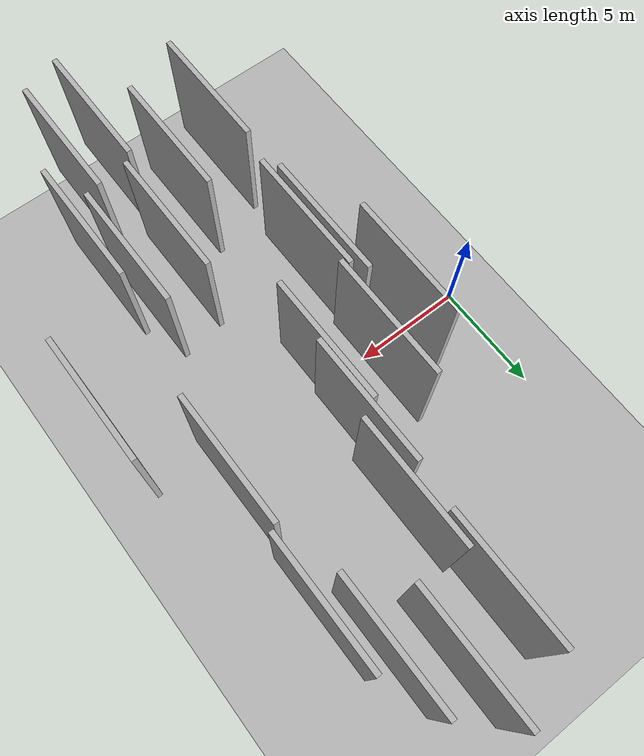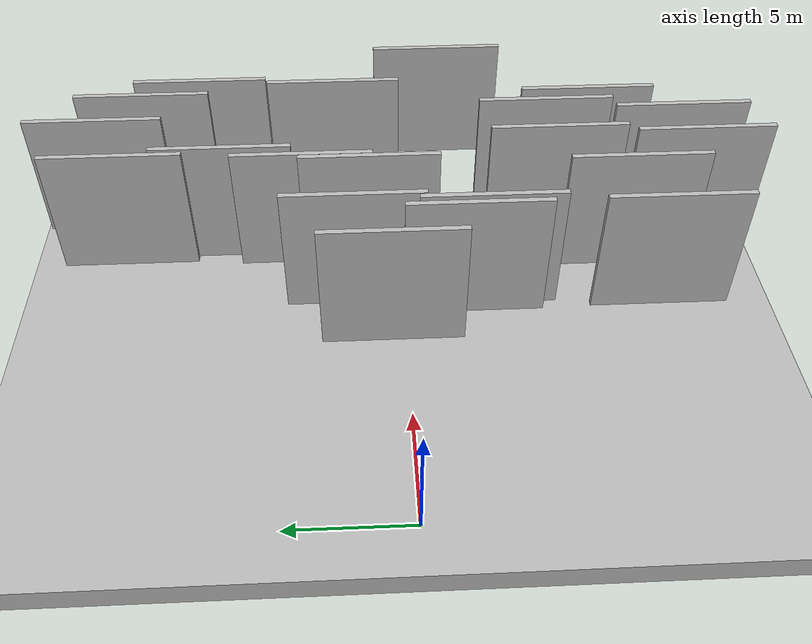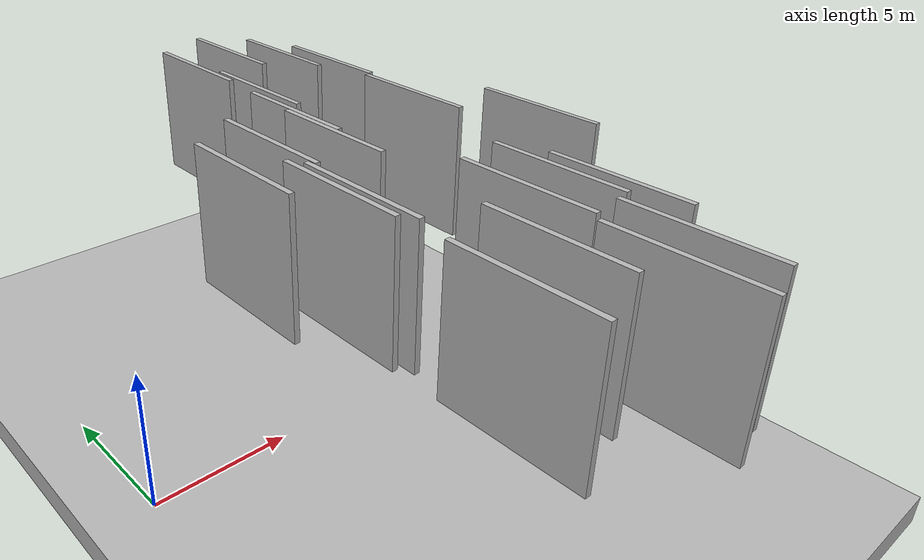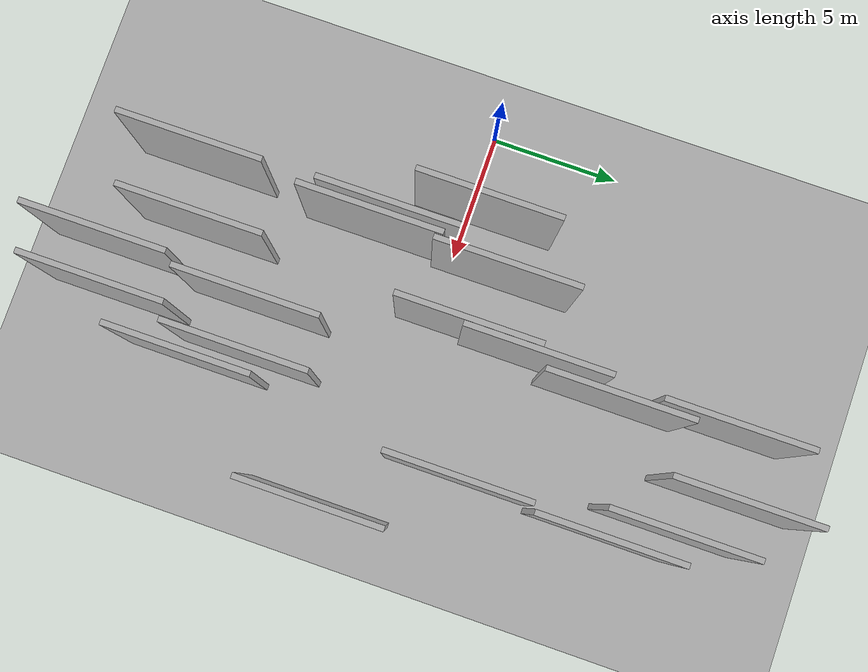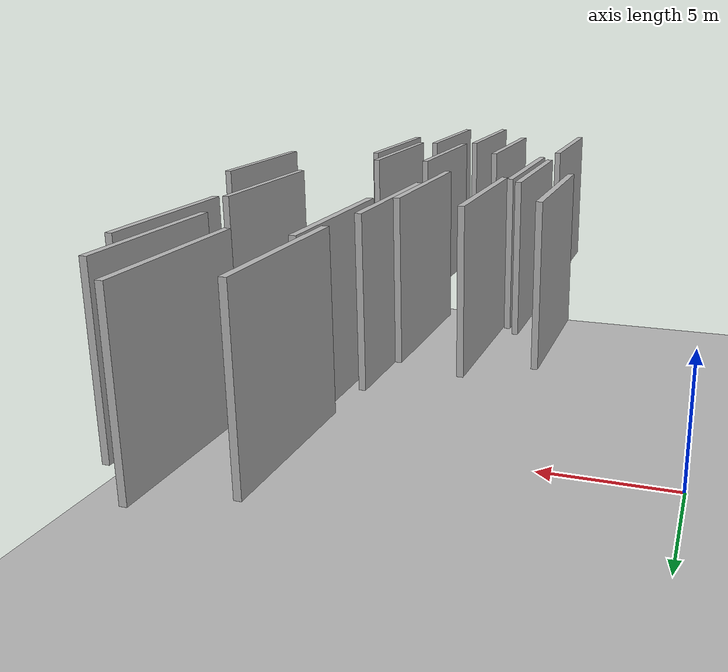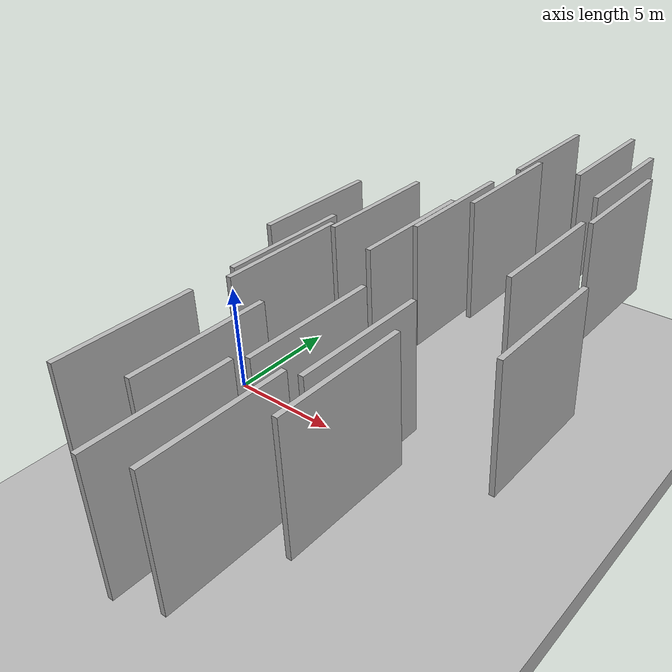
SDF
<?xml version="1.0" encoding="utf-8"?>

<sdf version="1.6">

   <world name="default">

      <gui fullscreen="0">

         <camera name="user_camera">

            <pose>-15 0 4.57585 0 0 0</pose>

            <view_controller>orbit</view_controller>

         </camera>

      </gui>

      <scene>

         <sky>

           <clouds>

             <speed>12</speed>

           </clouds>

         </sky>

         <ambient>0.4 0.4 0.4 1</ambient>

         <background>0.7 0.7 0.7 1</background>

         <shadows>1</shadows>

      </scene>

      <gravity>0 0 -9.8066</gravity>

      <magnetic_field>6e-06 2.3e-05 -4.2e-05</magnetic_field>

      <physics default="0" name="default_physics" type="ode">

         <ode>

            <solver>

               <type>quick</type>

               <iters>10</iters>

               <sor>1.0</sor>

               <use_dynamic_moi_rescaling>0</use_dynamic_moi_rescaling>

            </solver>

            <constraints>

               <cfm>0</cfm>

               <erp>0.2</erp>

               <contact_max_correcting_vel>100</contact_max_correcting_vel>

               <contact_surface_layer>0.001</contact_surface_layer>

            </constraints>

         </ode>

         <max_step_size>0.004</max_step_size>

         <real_time_factor>1</real_time_factor>

         <real_time_update_rate>250</real_time_update_rate>

      </physics>

      <light name="sun" type="directional">

         <cast_shadows>1</cast_shadows>

         <pose>0 0 10 0 0 0</pose>

         <diffuse>0.8 0.8 0.8 1</diffuse>

         <specular>0.2 0.2 0.2 1</specular>

         <attenuation>

            <range>1000</range>

            <constant>0.9</constant>

            <linear>0.01</linear>

            <quadratic>0.001</quadratic>

         </attenuation>

         <direction>-0.5 0.1 -0.9</direction>

      </light>

      <include>

         <name>ground_plane_1</name>

         <uri>model://HANNAS_ground_plane</uri>

         <pose>0 0 0  0 0 0</pose>

      </include>

      <include>

         <name>ground_plane_2</name>

         <uri>model://HANNAS_ground_plane</uri>

         <pose>100 0 0  0 0 0</pose>

      </include>

      <model name="HANNAS_wall_1">

         <static>1</static>

         <pose frame="">6.3868 2.0063 5.0 0.000000 0.000000 1.570796</pose>

         <link name="link">

            <pose frame="">0 0 2.50 0 0 0</pose>

            <collision name="collision">

               <geometry>

                  <box>

                     <size>5.00 0.2 5.00</size>

                  </box>

               </geometry>

               <max_contacts>10</max_contacts>

               <surface>

                  <contact>

                     <ode/>

                  </contact>

                  <bounce/>

                  <friction>

                     <torsional>

                        <ode/>

                     </torsional>

                     <ode/>

                  </friction>

               </surface>

            </collision>

            <visual name="visual">

               <cast_shadows>0</cast_shadows>

               <geometry>

                  <box>

                     <size>5.00 0.2 5.00</size>

                  </box>

               </geometry>

               <material>

                  <script>

                     <uri>model://HANNAS_wall/materials/scripts</uri>

                     <uri>model://HANNAS_wall/materials/textures</uri>

                     <name>vrc/HANNAS_wall</name>

                  </script>

               </material>

            </visual>

            <self_collide>0</self_collide>

            <enable_wind>0</enable_wind>

            <kinematic>0</kinematic>

         </link>

      </model>

      <model name="HANNAS_wall_2">

         <static>1</static>

         <pose frame="">5.8260 -8.9504 5.0 0.000000 0.000000 1.570796</pose>

         <link name="link">

            <pose frame="">0 0 2.50 0 0 0</pose>

            <collision name="collision">

               <geometry>

                  <box>

                     <size>5.00 0.2 5.00</size>

                  </box>

               </geometry>

               <max_contacts>10</max_contacts>

               <surface>

                  <contact>

                     <ode/>

                  </contact>

                  <bounce/>

                  <friction>

                     <torsional>

                        <ode/>

                     </torsional>

                     <ode/>

                  </friction>

               </surface>

            </collision>

            <visual name="visual">

               <cast_shadows>0</cast_shadows>

               <geometry>

                  <box>

                     <size>5.00 0.2 5.00</size>

                  </box>

               </geometry>

               <material>

                  <script>

                     <uri>model://HANNAS_wall/materials/scripts</uri>

                     <uri>model://HANNAS_wall/materials/textures</uri>

                     <name>vrc/HANNAS_wall</name>

                  </script>

               </material>

            </visual>

            <self_collide>0</self_collide>

            <enable_wind>0</enable_wind>

            <kinematic>0</kinematic>

         </link>

      </model>

      <model name="HANNAS_wall_3">

         <static>1</static>

         <pose frame="">12.6274 9.8577 5.0 0.000000 0.000000 1.570796</pose>

         <link name="link">

            <pose frame="">0 0 2.50 0 0 0</pose>

            <collision name="collision">

               <geometry>

                  <box>

                     <size>5.00 0.2 5.00</size>

                  </box>

               </geometry>

               <max_contacts>10</max_contacts>

               <surface>

                  <contact>

                     <ode/>

                  </contact>

                  <bounce/>

                  <friction>

                     <torsional>

                        <ode/>

                     </torsional>

                     <ode/>

                  </friction>

               </surface>

            </collision>

            <visual name="visual">

               <cast_shadows>0</cast_shadows>

               <geometry>

                  <box>

                     <size>5.00 0.2 5.00</size>

                  </box>

               </geometry>

               <material>

                  <script>

                     <uri>model://HANNAS_wall/materials/scripts</uri>

                     <uri>model://HANNAS_wall/materials/textures</uri>

                     <name>vrc/HANNAS_wall</name>

                  </script>

               </material>

            </visual>

            <self_collide>0</self_collide>

            <enable_wind>0</enable_wind>

            <kinematic>0</kinematic>

         </link>

      </model>

      <model name="HANNAS_wall_4">

         <static>1</static>

         <pose frame="">13.5132 7.7498 5.0 0.000000 0.000000 1.570796</pose>

         <link name="link">

            <pose frame="">0 0 2.50 0 0 0</pose>

            <collision name="collision">

               <geometry>

                  <box>

                     <size>5.00 0.2 5.00</size>

                  </box>

               </geometry>

               <max_contacts>10</max_contacts>

               <surface>

                  <contact>

                     <ode/>

                  </contact>

                  <bounce/>

                  <friction>

                     <torsional>

                        <ode/>

                     </torsional>

                     <ode/>

                  </friction>

               </surface>

            </collision>

            <visual name="visual">

               <cast_shadows>0</cast_shadows>

               <geometry>

                  <box>

                     <size>5.00 0.2 5.00</size>

                  </box>

               </geometry>

               <material>

                  <script>

                     <uri>model://HANNAS_wall/materials/scripts</uri>

                     <uri>model://HANNAS_wall/materials/textures</uri>

                     <name>vrc/HANNAS_wall</name>

                  </script>

               </material>

            </visual>

            <self_collide>0</self_collide>

            <enable_wind>0</enable_wind>

            <kinematic>0</kinematic>

         </link>

      </model>

      <model name="HANNAS_wall_5">

         <static>1</static>

         <pose frame="">6.1517 -2.7181 5.0 0.000000 0.000000 1.570796</pose>

         <link name="link">

            <pose frame="">0 0 2.50 0 0 0</pose>

            <collision name="collision">

               <geometry>

                  <box>

                     <size>5.00 0.2 5.00</size>

                  </box>

               </geometry>

               <max_contacts>10</max_contacts>

               <surface>

                  <contact>

                     <ode/>

                  </contact>

                  <bounce/>

                  <friction>

                     <torsional>

                        <ode/>

                     </torsional>

                     <ode/>

                  </friction>

               </surface>

            </collision>

            <visual name="visual">

               <cast_shadows>0</cast_shadows>

               <geometry>

                  <box>

                     <size>5.00 0.2 5.00</size>

                  </box>

               </geometry>

               <material>

                  <script>

                     <uri>model://HANNAS_wall/materials/scripts</uri>

                     <uri>model://HANNAS_wall/materials/textures</uri>

                     <name>vrc/HANNAS_wall</name>

                  </script>

               </material>

            </visual>

            <self_collide>0</self_collide>

            <enable_wind>0</enable_wind>

            <kinematic>0</kinematic>

         </link>

      </model>

      <model name="HANNAS_wall_6">

         <static>1</static>

         <pose frame="">8.8616 10.4589 5.0 0.000000 0.000000 1.570796</pose>

         <link name="link">

            <pose frame="">0 0 2.50 0 0 0</pose>

            <collision name="collision">

               <geometry>

                  <box>

                     <size>5.00 0.2 5.00</size>

                  </box>

               </geometry>

               <max_contacts>10</max_contacts>

               <surface>

                  <contact>

                     <ode/>

                  </contact>

                  <bounce/>

                  <friction>

                     <torsional>

                        <ode/>

                     </torsional>

                     <ode/>

                  </friction>

               </surface>

            </collision>

            <visual name="visual">

               <cast_shadows>0</cast_shadows>

               <geometry>

                  <box>

                     <size>5.00 0.2 5.00</size>

                  </box>

               </geometry>

               <material>

                  <script>

                     <uri>model://HANNAS_wall/materials/scripts</uri>

                     <uri>model://HANNAS_wall/materials/textures</uri>

                     <name>vrc/HANNAS_wall</name>

                  </script>

               </material>

            </visual>

            <self_collide>0</self_collide>

            <enable_wind>0</enable_wind>

            <kinematic>0</kinematic>

         </link>

      </model>

      <model name="HANNAS_wall_7">

         <static>1</static>

         <pose frame="">4.4778 0.7509 5.0 0.000000 0.000000 1.570796</pose>

         <link name="link">

            <pose frame="">0 0 2.50 0 0 0</pose>

            <collision name="collision">

               <geometry>

                  <box>

                     <size>5.00 0.2 5.00</size>

                  </box>

               </geometry>

               <max_contacts>10</max_contacts>

               <surface>

                  <contact>

                     <ode/>

                  </contact>

                  <bounce/>

                  <friction>

                     <torsional>

                        <ode/>

                     </torsional>

                     <ode/>

                  </friction>

               </surface>

            </collision>

            <visual name="visual">

               <cast_shadows>0</cast_shadows>

               <geometry>

                  <box>

                     <size>5.00 0.2 5.00</size>

                  </box>

               </geometry>

               <material>

                  <script>

                     <uri>model://HANNAS_wall/materials/scripts</uri>

                     <uri>model://HANNAS_wall/materials/textures</uri>

                     <name>vrc/HANNAS_wall</name>

                  </script>

               </material>

            </visual>

            <self_collide>0</self_collide>

            <enable_wind>0</enable_wind>

            <kinematic>0</kinematic>

         </link>

      </model>

      <model name="HANNAS_wall_8">

         <static>1</static>

         <pose frame="">11.6967 -5.2718 5.0 0.000000 0.000000 1.570796</pose>

         <link name="link">

            <pose frame="">0 0 2.50 0 0 0</pose>

            <collision name="collision">

               <geometry>

                  <box>

                     <size>5.00 0.2 5.00</size>

                  </box>

               </geometry>

               <max_contacts>10</max_contacts>

               <surface>

                  <contact>

                     <ode/>

                  </contact>

                  <bounce/>

                  <friction>

                     <torsional>

                        <ode/>

                     </torsional>

                     <ode/>

                  </friction>

               </surface>

            </collision>

            <visual name="visual">

               <cast_shadows>0</cast_shadows>

               <geometry>

                  <box>

                     <size>5.00 0.2 5.00</size>

                  </box>

               </geometry>

               <material>

                  <script>

                     <uri>model://HANNAS_wall/materials/scripts</uri>

                     <uri>model://HANNAS_wall/materials/textures</uri>

                     <name>vrc/HANNAS_wall</name>

                  </script>

               </material>

            </visual>

            <self_collide>0</self_collide>

            <enable_wind>0</enable_wind>

            <kinematic>0</kinematic>

         </link>

      </model>

      <model name="HANNAS_wall_9">

         <static>1</static>

         <pose frame="">5.7687 -2.1987 5.0 0.000000 0.000000 1.570796</pose>

         <link name="link">

            <pose frame="">0 0 2.50 0 0 0</pose>

            <collision name="collision">

               <geometry>

                  <box>

                     <size>5.00 0.2 5.00</size>

                  </box>

               </geometry>

               <max_contacts>10</max_contacts>

               <surface>

                  <contact>

                     <ode/>

                  </contact>

                  <bounce/>

                  <friction>

                     <torsional>

                        <ode/>

                     </torsional>

                     <ode/>

                  </friction>

               </surface>

            </collision>

            <visual name="visual">

               <cast_shadows>0</cast_shadows>

               <geometry>

                  <box>

                     <size>5.00 0.2 5.00</size>

                  </box>

               </geometry>

               <material>

                  <script>

                     <uri>model://HANNAS_wall/materials/scripts</uri>

                     <uri>model://HANNAS_wall/materials/textures</uri>

                     <name>vrc/HANNAS_wall</name>

                  </script>

               </material>

            </visual>

            <self_collide>0</self_collide>

            <enable_wind>0</enable_wind>

            <kinematic>0</kinematic>

         </link>

      </model>

      <model name="HANNAS_wall_10">

         <static>1</static>

         <pose frame="">8.0765 -8.1144 5.0 0.000000 0.000000 1.570796</pose>

         <link name="link">

            <pose frame="">0 0 2.50 0 0 0</pose>

            <collision name="collision">

               <geometry>

                  <box>

                     <size>5.00 0.2 5.00</size>

                  </box>

               </geometry>

               <max_contacts>10</max_contacts>

               <surface>

                  <contact>

                     <ode/>

                  </contact>

                  <bounce/>

                  <friction>

                     <torsional>

                        <ode/>

                     </torsional>

                     <ode/>

                  </friction>

               </surface>

            </collision>

            <visual name="visual">

               <cast_shadows>0</cast_shadows>

               <geometry>

                  <box>

                     <size>5.00 0.2 5.00</size>

                  </box>

               </geometry>

               <material>

                  <script>

                     <uri>model://HANNAS_wall/materials/scripts</uri>

                     <uri>model://HANNAS_wall/materials/textures</uri>

                     <name>vrc/HANNAS_wall</name>

                  </script>

               </material>

            </visual>

            <self_collide>0</self_collide>

            <enable_wind>0</enable_wind>

            <kinematic>0</kinematic>

         </link>

      </model>

      <model name="HANNAS_wall_11">

         <static>1</static>

         <pose frame="">15.5094 -1.4286 5.0 0.000000 0.000000 1.570796</pose>

         <link name="link">

            <pose frame="">0 0 2.50 0 0 0</pose>

            <collision name="collision">

               <geometry>

                  <box>

                     <size>5.00 0.2 5.00</size>

                  </box>

               </geometry>

               <max_contacts>10</max_contacts>

               <surface>

                  <contact>

                     <ode/>

                  </contact>

                  <bounce/>

                  <friction>

                     <torsional>

                        <ode/>

                     </torsional>

                     <ode/>

                  </friction>

               </surface>

            </collision>

            <visual name="visual">

               <cast_shadows>0</cast_shadows>

               <geometry>

                  <box>

                     <size>5.00 0.2 5.00</size>

                  </box>

               </geometry>

               <material>

                  <script>

                     <uri>model://HANNAS_wall/materials/scripts</uri>

                     <uri>model://HANNAS_wall/materials/textures</uri>

                     <name>vrc/HANNAS_wall</name>

                  </script>

               </material>

            </visual>

            <self_collide>0</self_collide>

            <enable_wind>0</enable_wind>

            <kinematic>0</kinematic>

         </link>

      </model>

      <model name="HANNAS_wall_12">

         <static>1</static>

         <pose frame="">12.3843 -6.9498 5.0 0.000000 0.000000 1.570796</pose>

         <link name="link">

            <pose frame="">0 0 2.50 0 0 0</pose>

            <collision name="collision">

               <geometry>

                  <box>

                     <size>5.00 0.2 5.00</size>

                  </box>

               </geometry>

               <max_contacts>10</max_contacts>

               <surface>

                  <contact>

                     <ode/>

                  </contact>

                  <bounce/>

                  <friction>

                     <torsional>

                        <ode/>

                     </torsional>

                     <ode/>

                  </friction>

               </surface>

            </collision>

            <visual name="visual">

               <cast_shadows>0</cast_shadows>

               <geometry>

                  <box>

                     <size>5.00 0.2 5.00</size>

                  </box>

               </geometry>

               <material>

                  <script>

                     <uri>model://HANNAS_wall/materials/scripts</uri>

                     <uri>model://HANNAS_wall/materials/textures</uri>

                     <name>vrc/HANNAS_wall</name>

                  </script>

               </material>

            </visual>

            <self_collide>0</self_collide>

            <enable_wind>0</enable_wind>

            <kinematic>0</kinematic>

         </link>

      </model>

      <model name="HANNAS_wall_13">

         <static>1</static>

         <pose frame="">9.5960 -10.8021 5.0 0.000000 0.000000 1.570796</pose>

         <link name="link">

            <pose frame="">0 0 2.50 0 0 0</pose>

            <collision name="collision">

               <geometry>

                  <box>

                     <size>5.00 0.2 5.00</size>

                  </box>

               </geometry>

               <max_contacts>10</max_contacts>

               <surface>

                  <contact>

                     <ode/>

                  </contact>

                  <bounce/>

                  <friction>

                     <torsional>

                        <ode/>

                     </torsional>

                     <ode/>

                  </friction>

               </surface>

            </collision>

            <visual name="visual">

               <cast_shadows>0</cast_shadows>

               <geometry>

                  <box>

                     <size>5.00 0.2 5.00</size>

                  </box>

               </geometry>

               <material>

                  <script>

                     <uri>model://HANNAS_wall/materials/scripts</uri>

                     <uri>model://HANNAS_wall/materials/textures</uri>

                     <name>vrc/HANNAS_wall</name>

                  </script>

               </material>

            </visual>

            <self_collide>0</self_collide>

            <enable_wind>0</enable_wind>

            <kinematic>0</kinematic>

         </link>

      </model>

      <model name="HANNAS_wall_14">

         <static>1</static>

         <pose frame="">9.9430 -5.5267 5.0 0.000000 0.000000 1.570796</pose>

         <link name="link">

            <pose frame="">0 0 2.50 0 0 0</pose>

            <collision name="collision">

               <geometry>

                  <box>

                     <size>5.00 0.2 5.00</size>

                  </box>

               </geometry>

               <max_contacts>10</max_contacts>

               <surface>

                  <contact>

                     <ode/>

                  </contact>

                  <bounce/>

                  <friction>

                     <torsional>

                        <ode/>

                     </torsional>

                     <ode/>

                  </friction>

               </surface>

            </collision>

            <visual name="visual">

               <cast_shadows>0</cast_shadows>

               <geometry>

                  <box>

                     <size>5.00 0.2 5.00</size>

                  </box>

               </geometry>

               <material>

                  <script>

                     <uri>model://HANNAS_wall/materials/scripts</uri>

                     <uri>model://HANNAS_wall/materials/textures</uri>

                     <name>vrc/HANNAS_wall</name>

                  </script>

               </material>

            </visual>

            <self_collide>0</self_collide>

            <enable_wind>0</enable_wind>

            <kinematic>0</kinematic>

         </link>

      </model>

      <model name="HANNAS_wall_15">

         <static>1</static>

         <pose frame="">8.4830 1.4118 5.0 0.000000 0.000000 1.570796</pose>

         <link name="link">

            <pose frame="">0 0 2.50 0 0 0</pose>

            <collision name="collision">

               <geometry>

                  <box>

                     <size>5.00 0.2 5.00</size>

                  </box>

               </geometry>

               <max_contacts>10</max_contacts>

               <surface>

                  <contact>

                     <ode/>

                  </contact>

                  <bounce/>

                  <friction>

                     <torsional>

                        <ode/>

                     </torsional>

                     <ode/>

                  </friction>

               </surface>

            </collision>

            <visual name="visual">

               <cast_shadows>0</cast_shadows>

               <geometry>

                  <box>

                     <size>5.00 0.2 5.00</size>

                  </box>

               </geometry>

               <material>

                  <script>

                     <uri>model://HANNAS_wall/materials/scripts</uri>

                     <uri>model://HANNAS_wall/materials/textures</uri>

                     <name>vrc/HANNAS_wall</name>

                  </script>

               </material>

            </visual>

            <self_collide>0</self_collide>

            <enable_wind>0</enable_wind>

            <kinematic>0</kinematic>

         </link>

      </model>

      <model name="HANNAS_wall_16">

         <static>1</static>

         <pose frame="">13.2514 2.6789 5.0 0.000000 0.000000 1.570796</pose>

         <link name="link">

            <pose frame="">0 0 2.50 0 0 0</pose>

            <collision name="collision">

               <geometry>

                  <box>

                     <size>5.00 0.2 5.00</size>

                  </box>

               </geometry>

               <max_contacts>10</max_contacts>

               <surface>

                  <contact>

                     <ode/>

                  </contact>

                  <bounce/>

                  <friction>

                     <torsional>

                        <ode/>

                     </torsional>

                     <ode/>

                  </friction>

               </surface>

            </collision>

            <visual name="visual">

               <cast_shadows>0</cast_shadows>

               <geometry>

                  <box>

                     <size>5.00 0.2 5.00</size>

                  </box>

               </geometry>

               <material>

                  <script>

                     <uri>model://HANNAS_wall/materials/scripts</uri>

                     <uri>model://HANNAS_wall/materials/textures</uri>

                     <name>vrc/HANNAS_wall</name>

                  </script>

               </material>

            </visual>

            <self_collide>0</self_collide>

            <enable_wind>0</enable_wind>

            <kinematic>0</kinematic>

         </link>

      </model>

      <model name="HANNAS_wall_17">

         <static>1</static>

         <pose frame="">11.1372 -10.3055 5.0 0.000000 0.000000 1.570796</pose>

         <link name="link">

            <pose frame="">0 0 2.50 0 0 0</pose>

            <collision name="collision">

               <geometry>

                  <box>

                     <size>5.00 0.2 5.00</size>

                  </box>

               </geometry>

               <max_contacts>10</max_contacts>

               <surface>

                  <contact>

                     <ode/>

                  </contact>

                  <bounce/>

                  <friction>

                     <torsional>

                        <ode/>

                     </torsional>

                     <ode/>

                  </friction>

               </surface>

            </collision>

            <visual name="visual">

               <cast_shadows>0</cast_shadows>

               <geometry>

                  <box>

                     <size>5.00 0.2 5.00</size>

                  </box>

               </geometry>

               <material>

                  <script>

                     <uri>model://HANNAS_wall/materials/scripts</uri>

                     <uri>model://HANNAS_wall/materials/textures</uri>

                     <name>vrc/HANNAS_wall</name>

                  </script>

               </material>

            </visual>

            <self_collide>0</self_collide>

            <enable_wind>0</enable_wind>

            <kinematic>0</kinematic>

         </link>

      </model>

      <model name="HANNAS_wall_18">

         <static>1</static>

         <pose frame="">8.6860 3.7910 5.0 0.000000 0.000000 1.570796</pose>

         <link name="link">

            <pose frame="">0 0 2.50 0 0 0</pose>

            <collision name="collision">

               <geometry>

                  <box>

                     <size>5.00 0.2 5.00</size>

                  </box>

               </geometry>

               <max_contacts>10</max_contacts>

               <surface>

                  <contact>

                     <ode/>

                  </contact>

                  <bounce/>

                  <friction>

                     <torsional>

                        <ode/>

                     </torsional>

                     <ode/>

                  </friction>

               </surface>

            </collision>

            <visual name="visual">

               <cast_shadows>0</cast_shadows>

               <geometry>

                  <box>

                     <size>5.00 0.2 5.00</size>

                  </box>

               </geometry>

               <material>

                  <script>

                     <uri>model://HANNAS_wall/materials/scripts</uri>

                     <uri>model://HANNAS_wall/materials/textures</uri>

                     <name>vrc/HANNAS_wall</name>

                  </script>

               </material>

            </visual>

            <self_collide>0</self_collide>

            <enable_wind>0</enable_wind>

            <kinematic>0</kinematic>

         </link>

      </model>

      <model name="HANNAS_wall_19">

         <static>1</static>

         <pose frame="">11.0534 11.4229 5.0 0.000000 0.000000 1.570796</pose>

         <link name="link">

            <pose frame="">0 0 2.50 0 0 0</pose>

            <collision name="collision">

               <geometry>

                  <box>

                     <size>5.00 0.2 5.00</size>

                  </box>

               </geometry>

               <max_contacts>10</max_contacts>

               <surface>

                  <contact>

                     <ode/>

                  </contact>

                  <bounce/>

                  <friction>

                     <torsional>

                        <ode/>

                     </torsional>

                     <ode/>

                  </friction>

               </surface>

            </collision>

            <visual name="visual">

               <cast_shadows>0</cast_shadows>

               <geometry>

                  <box>

                     <size>5.00 0.2 5.00</size>

                  </box>

               </geometry>

               <material>

                  <script>

                     <uri>model://HANNAS_wall/materials/scripts</uri>

                     <uri>model://HANNAS_wall/materials/textures</uri>

                     <name>vrc/HANNAS_wall</name>

                  </script>

               </material>

            </visual>

            <self_collide>0</self_collide>

            <enable_wind>0</enable_wind>

            <kinematic>0</kinematic>

         </link>

      </model>

      <model name="HANNAS_wall_20">

         <static>1</static>

         <pose frame="">9.1830 6.6681 5.0 0.000000 0.000000 1.570796</pose>

         <link name="link">

            <pose frame="">0 0 2.50 0 0 0</pose>

            <collision name="collision">

               <geometry>

                  <box>

                     <size>5.00 0.2 5.00</size>

                  </box>

               </geometry>

               <max_contacts>10</max_contacts>

               <surface>

                  <contact>

                     <ode/>

                  </contact>

                  <bounce/>

                  <friction>

                     <torsional>

                        <ode/>

                     </torsional>

                     <ode/>

                  </friction>

               </surface>

            </collision>

            <visual name="visual">

               <cast_shadows>0</cast_shadows>

               <geometry>

                  <box>

                     <size>5.00 0.2 5.00</size>

                  </box>

               </geometry>

               <material>

                  <script>

                     <uri>model://HANNAS_wall/materials/scripts</uri>

                     <uri>model://HANNAS_wall/materials/textures</uri>

                     <name>vrc/HANNAS_wall</name>

                  </script>

               </material>

            </visual>

            <self_collide>0</self_collide>

            <enable_wind>0</enable_wind>

            <kinematic>0</kinematic>

         </link>

      </model>

   </world>

</sdf>

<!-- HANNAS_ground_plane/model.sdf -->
<sdf version="1.4">
<model name="HANNAS_ground_plane">
  <static>true</static>
    <link name="link">
      <collision name="collision">
        <geometry>
          <plane>
            <normal>0 0 1</normal>
            <size>1000 1000</size>
          </plane>
        </geometry>
        <surface>
          <friction>
            <ode>
              <mu>100</mu>
              <mu2>50</mu2>
            </ode>
          </friction>
        </surface>
      </collision>
      <visual name="visual">
        <cast_shadows>false</cast_shadows>
        <geometry>
          <plane>
            <normal>0 0 1</normal>
            <size>1000 1000</size>
          </plane>
        </geometry>
        <material>
          <script>
            <uri>model://HANNAS_ground_plane/materials/scripts/HANNAS_ground_plane.material</uri>
	    <uri>model://HANNAS_ground_plane/materials/textures</uri>
            <name>HANNASGroundPlane/Image</name>
          </script>
        </material>
      </visual>
    </link>
  </model>
</sdf>
